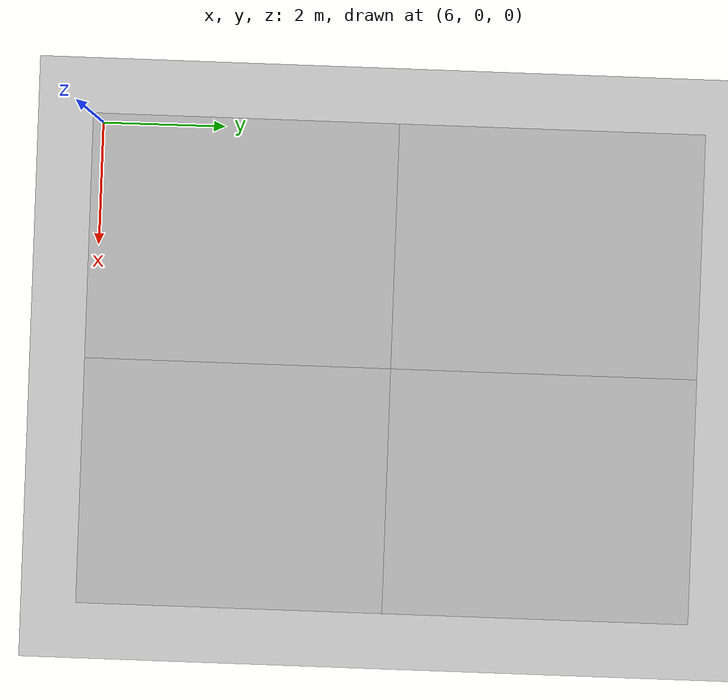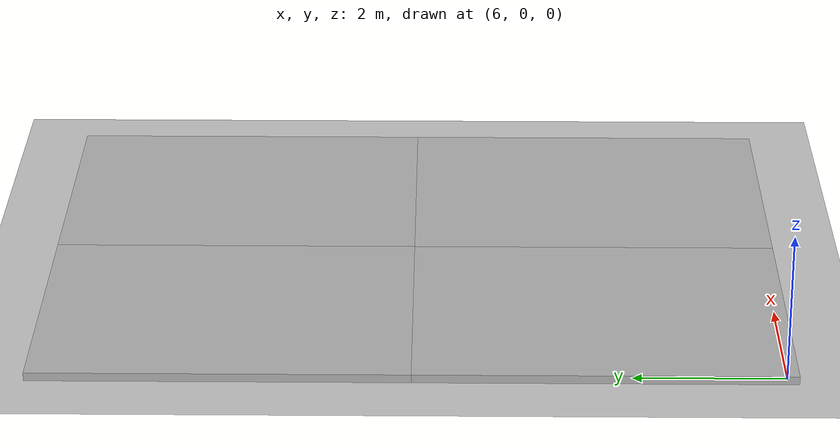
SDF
<sdf version="1.6">
 <world name="default">
  <model name="ground_plane">
   <static>1</static>
   <link name="link">
    <collision name="collision">
     <geometry><plane><normal>0 0 1</normal><size>100 100</size></plane></geometry>
     <surface><friction><ode><mu>100</mu><mu2>50</mu2></ode></friction></surface>
    </collision>
    <visual name="visual">
     <cast_shadows>0</cast_shadows>
     <geometry><plane><normal>0 0 1</normal><size>100 100</size></plane></geometry>
     <material>
      <script><uri>file://media/materials/scripts/gazebo.material</uri><name>Gazebo/Grey</name></script>
     </material>
    </visual>
   </link>
  </model>
  <model name="small_plant_22">
   <pose>8.45946 2.00404 -5885.85 0 -0 0</pose>
   <link name="link_0">
    <pose>8.45946 2.00404 0.110674 0 -0 0</pose>
    <inertial>
     <inertia><ixx>1</ixx><ixy>0</ixy><ixz>0</ixz><iyy>1</iyy><iyz>0</iyz><izz>1</izz></inertia>
     <mass>1</mass>
    </inertial>
   </link>
  </model>
  <model name="small_plant_23">
   <pose>8.66216 2.00073 -5885.85 0 -0 0</pose>
   <link name="link_0">
    <pose>8.66216 2.00073 0.110674 0 -0 0</pose>
    <inertial>
     <inertia><ixx>1</ixx><ixy>0</ixy><ixz>0</ixz><iyy>1</iyy><iyz>0</iyz><izz>1</izz></inertia>
     <mass>1</mass>
    </inertial>
   </link>
  </model>
  <model name="small_plant_24">
   <pose>8.86486 2.00329 -5885.85 0 -0 0</pose>
   <link name="link_0">
    <pose>8.86486 2.00329 0.110674 0 -0 0</pose>
    <inertial>
     <inertia><ixx>1</ixx><ixy>0</ixy><ixz>0</ixz><iyy>1</iyy><iyz>0</iyz><izz>1</izz></inertia>
     <mass>1</mass>
    </inertial>
   </link>
  </model>
  <model name="small_plant_25">
   <pose>9.06757 2.00418 -5885.85 0 -0 0</pose>
   <link name="link_0">
    <pose>9.06757 2.00418 0.110674 0 -0 0</pose>
    <inertial>
     <inertia><ixx>1</ixx><ixy>0</ixy><ixz>0</ixz><iyy>1</iyy><iyz>0</iyz><izz>1</izz></inertia>
     <mass>1</mass>
    </inertial>
   </link>
  </model>
  <model name="small_plant_26">
   <pose>9.27027 2.00492 -5885.85 0 -0 0</pose>
   <link name="link_0">
    <pose>9.27027 2.00492 0.110674 0 -0 0</pose>
    <inertial>
     <inertia><ixx>1</ixx><ixy>0</ixy><ixz>0</ixz><iyy>1</iyy><iyz>0</iyz><izz>1</izz></inertia>
     <mass>1</mass>
    </inertial>
   </link>
  </model>
  <model name="small_plant_27">
   <pose>9.47297 2.00561 -5885.51 0 -0 0</pose>
   <link name="link_0">
    <pose>9.47297 2.00561 0.110674 0 -0 0</pose>
    <inertial>
     <inertia><ixx>1</ixx><ixy>0</ixy><ixz>0</ixz><iyy>1</iyy><iyz>0</iyz><izz>1</izz></inertia>
     <mass>1</mass>
    </inertial>
   </link>
  </model>
  <model name="small_plant_28">
   <pose>9.67568 2.00465 -5885.51 0 -0 0</pose>
   <link name="link_0">
    <pose>9.67568 2.00465 0.110674 0 -0 0</pose>
    <inertial>
     <inertia><ixx>1</ixx><ixy>0</ixy><ixz>0</ixz><iyy>1</iyy><iyz>0</iyz><izz>1</izz></inertia>
     <mass>1</mass>
    </inertial>
   </link>
  </model>
  <model name="small_plant_29">
   <pose>9.87838 2.00073 -5885.51 0 -0 0</pose>
   <link name="link_0">
    <pose>9.87838 2.00073 0.110674 0 -0 0</pose>
    <inertial>
     <inertia><ixx>1</ixx><ixy>0</ixy><ixz>0</ixz><iyy>1</iyy><iyz>0</iyz><izz>1</izz></inertia>
     <mass>1</mass>
    </inertial>
   </link>
  </model>
  <model name="small_plant_30">
   <pose>10.0811 2.00253 -5885.51 0 -0 0</pose>
   <link name="link_0">
    <pose>10.0811 2.00253 0.110674 0 -0 0</pose>
    <inertial>
     <inertia><ixx>1</ixx><ixy>0</ixy><ixz>0</ixz><iyy>1</iyy><iyz>0</iyz><izz>1</izz></inertia>
     <mass>1</mass>
    </inertial>
   </link>
  </model>
  <model name="small_plant_31">
   <pose>10.2838 2.00343 -5885.51 0 -0 0</pose>
   <link name="link_0">
    <pose>10.2838 2.00343 0.110674 0 -0 0</pose>
    <inertial>
     <inertia><ixx>1</ixx><ixy>0</ixy><ixz>0</ixz><iyy>1</iyy><iyz>0</iyz><izz>1</izz></inertia>
     <mass>1</mass>
    </inertial>
   </link>
  </model>
  <model name="small_plant_32">
   <pose>10.4865 2.01132 -5885.51 0 -0 0</pose>
   <link name="link_0">
    <pose>10.4865 2.01132 0.110674 0 -0 0</pose>
    <inertial>
     <inertia><ixx>1</ixx><ixy>0</ixy><ixz>0</ixz><iyy>1</iyy><iyz>0</iyz><izz>1</izz></inertia>
     <mass>1</mass>
    </inertial>
   </link>
  </model>
  <model name="small_plant_97">
   <pose>8.45946 2.70182 -5884.49 0 -0 0</pose>
   <link name="link_0">
    <pose>8.45946 2.70182 0.110674 0 -0 0</pose>
    <inertial>
     <inertia><ixx>1</ixx><ixy>0</ixy><ixz>0</ixz><iyy>1</iyy><iyz>0</iyz><izz>1</izz></inertia>
     <mass>1</mass>
    </inertial>
   </link>
  </model>
  <model name="small_plant_98">
   <pose>8.66216 2.70787 -5884.49 0 -0 0</pose>
   <link name="link_0">
    <pose>8.66216 2.70787 0.110674 0 -0 0</pose>
    <inertial>
     <inertia><ixx>1</ixx><ixy>0</ixy><ixz>0</ixz><iyy>1</iyy><iyz>0</iyz><izz>1</izz></inertia>
     <mass>1</mass>
    </inertial>
   </link>
  </model>
  <model name="small_plant_99">
   <pose>8.86486 2.70119 -5884.49 0 -0 0</pose>
   <link name="link_0">
    <pose>8.86486 2.70119 0.110674 0 -0 0</pose>
    <inertial>
     <inertia><ixx>1</ixx><ixy>0</ixy><ixz>0</ixz><iyy>1</iyy><iyz>0</iyz><izz>1</izz></inertia>
     <mass>1</mass>
    </inertial>
   </link>
  </model>
  <model name="small_plant_100">
   <pose>9.06757 2.7059 -5886.19 0 -0 0</pose>
   <link name="link_0">
    <pose>9.06757 2.7059 0.110674 0 -0 0</pose>
    <inertial>
     <inertia><ixx>1</ixx><ixy>0</ixy><ixz>0</ixz><iyy>1</iyy><iyz>0</iyz><izz>1</izz></inertia>
     <mass>1</mass>
    </inertial>
   </link>
  </model>
  <model name="small_plant_101">
   <pose>9.27027 2.70226 -5886.19 0 -0 0</pose>
   <link name="link_0">
    <pose>9.27027 2.70226 0.110674 0 -0 0</pose>
    <inertial>
     <inertia><ixx>1</ixx><ixy>0</ixy><ixz>0</ixz><iyy>1</iyy><iyz>0</iyz><izz>1</izz></inertia>
     <mass>1</mass>
    </inertial>
   </link>
  </model>
  <model name="small_plant_102">
   <pose>9.47297 2.70222 -5886.19 0 -0 0</pose>
   <link name="link_0">
    <pose>9.47297 2.70222 0.110674 0 -0 0</pose>
    <inertial>
     <inertia><ixx>1</ixx><ixy>0</ixy><ixz>0</ixz><iyy>1</iyy><iyz>0</iyz><izz>1</izz></inertia>
     <mass>1</mass>
    </inertial>
   </link>
  </model>
  <model name="small_plant_103">
   <pose>9.67568 2.70183 -5886.19 0 -0 0</pose>
   <link name="link_0">
    <pose>9.67568 2.70183 0.110674 0 -0 0</pose>
    <inertial>
     <inertia><ixx>1</ixx><ixy>0</ixy><ixz>0</ixz><iyy>1</iyy><iyz>0</iyz><izz>1</izz></inertia>
     <mass>1</mass>
    </inertial>
   </link>
  </model>
  <model name="small_plant_104">
   <pose>9.87838 2.70028 -5886.19 0 -0 0</pose>
   <link name="link_0">
    <pose>9.87838 2.70028 0.110674 0 -0 0</pose>
    <inertial>
     <inertia><ixx>1</ixx><ixy>0</ixy><ixz>0</ixz><iyy>1</iyy><iyz>0</iyz><izz>1</izz></inertia>
     <mass>1</mass>
    </inertial>
   </link>
  </model>
  <model name="small_plant_105">
   <pose>10.0811 2.70955 -5886.19 0 -0 0</pose>
   <link name="link_0">
    <pose>10.0811 2.70955 0.110674 0 -0 0</pose>
    <inertial>
     <inertia><ixx>1</ixx><ixy>0</ixy><ixz>0</ixz><iyy>1</iyy><iyz>0</iyz><izz>1</izz></inertia>
     <mass>1</mass>
    </inertial>
   </link>
  </model>
  <model name="small_plant_106">
   <pose>10.2838 2.70987 -5886.19 0 -0 0</pose>
   <link name="link_0">
    <pose>10.2838 2.70987 0.110674 0 -0 0</pose>
    <inertial>
     <inertia><ixx>1</ixx><ixy>0</ixy><ixz>0</ixz><iyy>1</iyy><iyz>0</iyz><izz>1</izz></inertia>
     <mass>1</mass>
    </inertial>
   </link>
  </model>
  <model name="small_plant_172">
   <pose>8.45946 3.40331 -5885.85 0 -0 0</pose>
   <link name="link_0">
    <pose>8.45946 3.40331 0.110674 0 -0 0</pose>
    <inertial>
     <inertia><ixx>1</ixx><ixy>0</ixy><ixz>0</ixz><iyy>1</iyy><iyz>0</iyz><izz>1</izz></inertia>
     <mass>1</mass>
    </inertial>
   </link>
  </model>
  <model name="small_plant_173">
   <pose>8.66216 3.40028 -5885.85 0 -0 0</pose>
   <link name="link_0">
    <pose>8.66216 3.40028 0.110674 0 -0 0</pose>
    <inertial>
     <inertia><ixx>1</ixx><ixy>0</ixy><ixz>0</ixz><iyy>1</iyy><iyz>0</iyz><izz>1</izz></inertia>
     <mass>1</mass>
    </inertial>
   </link>
  </model>
  <model name="small_plant_174">
   <pose>8.86486 3.40035 -5885.85 0 -0 0</pose>
   <link name="link_0">
    <pose>8.86486 3.40035 0.110674 0 -0 0</pose>
    <inertial>
     <inertia><ixx>1</ixx><ixy>0</ixy><ixz>0</ixz><iyy>1</iyy><iyz>0</iyz><izz>1</izz></inertia>
     <mass>1</mass>
    </inertial>
   </link>
  </model>
  <model name="small_plant_175">
   <pose>9.06757 3.40189 -5885.85 0 -0 0</pose>
   <link name="link_0">
    <pose>9.06757 3.40189 0.110674 0 -0 0</pose>
    <inertial>
     <inertia><ixx>1</ixx><ixy>0</ixy><ixz>0</ixz><iyy>1</iyy><iyz>0</iyz><izz>1</izz></inertia>
     <mass>1</mass>
    </inertial>
   </link>
  </model>
  <model name="small_plant_176">
   <pose>9.27027 3.4015 -5885.85 0 -0 0</pose>
   <link name="link_0">
    <pose>9.27027 3.4015 0.110674 0 -0 0</pose>
    <inertial>
     <inertia><ixx>1</ixx><ixy>0</ixy><ixz>0</ixz><iyy>1</iyy><iyz>0</iyz><izz>1</izz></inertia>
     <mass>1</mass>
    </inertial>
   </link>
  </model>
  <model name="small_plant_177">
   <pose>9.47297 3.4047 -5885.85 0 -0 0</pose>
   <link name="link_0">
    <pose>9.47297 3.4047 0.110674 0 -0 0</pose>
    <inertial>
     <inertia><ixx>1</ixx><ixy>0</ixy><ixz>0</ixz><iyy>1</iyy><iyz>0</iyz><izz>1</izz></inertia>
     <mass>1</mass>
    </inertial>
   </link>
  </model>
  <model name="small_plant_178">
   <pose>9.67568 3.40401 -5885.85 0 -0 0</pose>
   <link name="link_0">
    <pose>9.67568 3.40401 0.110674 0 -0 0</pose>
    <inertial>
     <inertia><ixx>1</ixx><ixy>0</ixy><ixz>0</ixz><iyy>1</iyy><iyz>0</iyz><izz>1</izz></inertia>
     <mass>1</mass>
    </inertial>
   </link>
  </model>
  <model name="small_plant_179">
   <pose>9.87838 3.40239 -5885.85 0 -0 0</pose>
   <link name="link_0">
    <pose>9.87838 3.40239 0.110674 0 -0 0</pose>
    <inertial>
     <inertia><ixx>1</ixx><ixy>0</ixy><ixz>0</ixz><iyy>1</iyy><iyz>0</iyz><izz>1</izz></inertia>
     <mass>1</mass>
    </inertial>
   </link>
  </model>
  <model name="small_plant_180">
   <pose>10.0811 3.40339 -5885.85 0 -0 0</pose>
   <link name="link_0">
    <pose>10.0811 3.40339 0.110674 0 -0 0</pose>
    <inertial>
     <inertia><ixx>1</ixx><ixy>0</ixy><ixz>0</ixz><iyy>1</iyy><iyz>0</iyz><izz>1</izz></inertia>
     <mass>1</mass>
    </inertial>
   </link>
  </model>
  <model name="small_plant_181">
   <pose>10.2838 3.40188 -5885.85 0 -0 0</pose>
   <link name="link_0">
    <pose>10.2838 3.40188 0.110674 0 -0 0</pose>
    <inertial>
     <inertia><ixx>1</ixx><ixy>0</ixy><ixz>0</ixz><iyy>1</iyy><iyz>0</iyz><izz>1</izz></inertia>
     <mass>1</mass>
    </inertial>
   </link>
  </model>
  <model name="small_plant_247">
   <pose>8.45946 4.10251 -5886.1 0 -0 0</pose>
   <link name="link_0">
    <pose>8.45946 4.10251 0.110674 0 -0 0</pose>
    <inertial>
     <inertia><ixx>1</ixx><ixy>0</ixy><ixz>0</ixz><iyy>1</iyy><iyz>0</iyz><izz>1</izz></inertia>
     <mass>1</mass>
    </inertial>
   </link>
  </model>
  <model name="small_plant_248">
   <pose>8.66216 4.10343 -5886.1 0 -0 0</pose>
   <link name="link_0">
    <pose>8.66216 4.10343 0.110674 0 -0 0</pose>
    <inertial>
     <inertia><ixx>1</ixx><ixy>0</ixy><ixz>0</ixz><iyy>1</iyy><iyz>0</iyz><izz>1</izz></inertia>
     <mass>1</mass>
    </inertial>
   </link>
  </model>
  <model name="small_plant_249">
   <pose>8.86486 4.10041 -5886.1 0 -0 0</pose>
   <link name="link_0">
    <pose>8.86486 4.10041 0.110674 0 -0 0</pose>
    <inertial>
     <inertia><ixx>1</ixx><ixy>0</ixy><ixz>0</ixz><iyy>1</iyy><iyz>0</iyz><izz>1</izz></inertia>
     <mass>1</mass>
    </inertial>
   </link>
  </model>
  <model name="small_plant_250">
   <pose>9.06757 4.1029 -5886.1 0 -0 0</pose>
   <link name="link_0">
    <pose>9.06757 4.1029 0.110674 0 -0 0</pose>
    <inertial>
     <inertia><ixx>1</ixx><ixy>0</ixy><ixz>0</ixz><iyy>1</iyy><iyz>0</iyz><izz>1</izz></inertia>
     <mass>1</mass>
    </inertial>
   </link>
  </model>
  <model name="small_plant_251">
   <pose>9.27027 4.10107 -5886.1 0 -0 0</pose>
   <link name="link_0">
    <pose>9.27027 4.10107 0.110674 0 -0 0</pose>
    <inertial>
     <inertia><ixx>1</ixx><ixy>0</ixy><ixz>0</ixz><iyy>1</iyy><iyz>0</iyz><izz>1</izz></inertia>
     <mass>1</mass>
    </inertial>
   </link>
  </model>
  <model name="small_plant_252">
   <pose>9.47297 4.10339 -5886.1 0 -0 0</pose>
   <link name="link_0">
    <pose>9.47297 4.10339 0.110674 0 -0 0</pose>
    <inertial>
     <inertia><ixx>1</ixx><ixy>0</ixy><ixz>0</ixz><iyy>1</iyy><iyz>0</iyz><izz>1</izz></inertia>
     <mass>1</mass>
    </inertial>
   </link>
  </model>
  <model name="small_plant_253">
   <pose>9.67568 4.1054 -5886.1 0 -0 0</pose>
   <link name="link_0">
    <pose>9.67568 4.1054 0.110674 0 -0 0</pose>
    <inertial>
     <inertia><ixx>1</ixx><ixy>0</ixy><ixz>0</ixz><iyy>1</iyy><iyz>0</iyz><izz>1</izz></inertia>
     <mass>1</mass>
    </inertial>
   </link>
  </model>
  <model name="small_plant_254">
   <pose>9.87838 4.10341 -5886.1 0 -0 0</pose>
   <link name="link_0">
    <pose>9.87838 4.10341 0.110674 0 -0 0</pose>
    <inertial>
     <inertia><ixx>1</ixx><ixy>0</ixy><ixz>0</ixz><iyy>1</iyy><iyz>0</iyz><izz>1</izz></inertia>
     <mass>1</mass>
    </inertial>
   </link>
  </model>
  <model name="small_plant_255">
   <pose>10.0811 4.10867 -5886.1 0 -0 0</pose>
   <link name="link_0">
    <pose>10.0811 4.10867 0.110674 0 -0 0</pose>
    <inertial>
     <inertia><ixx>1</ixx><ixy>0</ixy><ixz>0</ixz><iyy>1</iyy><iyz>0</iyz><izz>1</izz></inertia>
     <mass>1</mass>
    </inertial>
   </link>
  </model>
  <model name="small_plant_256">
   <pose>10.2838 4.10208 -5886.1 0 -0 0</pose>
   <link name="link_0">
    <pose>10.2838 4.10208 0.110674 0 -0 0</pose>
    <inertial>
     <inertia><ixx>1</ixx><ixy>0</ixy><ixz>0</ixz><iyy>1</iyy><iyz>0</iyz><izz>1</izz></inertia>
     <mass>1</mass>
    </inertial>
   </link>
  </model>
  <model name="small_plant_322">
   <pose>8.45946 4.80278 -5885.85 0 -0 0</pose>
   <link name="link_0">
    <pose>8.45946 4.80278 0.110674 0 -0 0</pose>
    <inertial>
     <inertia><ixx>1</ixx><ixy>0</ixy><ixz>0</ixz><iyy>1</iyy><iyz>0</iyz><izz>1</izz></inertia>
     <mass>1</mass>
    </inertial>
   </link>
  </model>
  <model name="small_plant_323">
   <pose>8.66216 4.80968 -5885.85 0 -0 0</pose>
   <link name="link_0">
    <pose>8.66216 4.80968 0.110674 0 -0 0</pose>
    <inertial>
     <inertia><ixx>1</ixx><ixy>0</ixy><ixz>0</ixz><iyy>1</iyy><iyz>0</iyz><izz>1</izz></inertia>
     <mass>1</mass>
    </inertial>
   </link>
  </model>
  <model name="small_plant_324">
   <pose>8.86486 4.80448 -5885.85 0 -0 0</pose>
   <link name="link_0">
    <pose>8.86486 4.80448 0.110674 0 -0 0</pose>
    <inertial>
     <inertia><ixx>1</ixx><ixy>0</ixy><ixz>0</ixz><iyy>1</iyy><iyz>0</iyz><izz>1</izz></inertia>
     <mass>1</mass>
    </inertial>
   </link>
  </model>
  <model name="small_plant_325">
   <pose>9.06757 4.8045 -5885.85 0 -0 0</pose>
   <link name="link_0">
    <pose>9.06757 4.8045 0.110674 0 -0 0</pose>
    <inertial>
     <inertia><ixx>1</ixx><ixy>0</ixy><ixz>0</ixz><iyy>1</iyy><iyz>0</iyz><izz>1</izz></inertia>
     <mass>1</mass>
    </inertial>
   </link>
  </model>
  <model name="small_plant_326">
   <pose>9.27027 4.8013 -5885.85 0 -0 0</pose>
   <link name="link_0">
    <pose>9.27027 4.8013 0.110674 0 -0 0</pose>
    <inertial>
     <inertia><ixx>1</ixx><ixy>0</ixy><ixz>0</ixz><iyy>1</iyy><iyz>0</iyz><izz>1</izz></inertia>
     <mass>1</mass>
    </inertial>
   </link>
  </model>
  <model name="small_plant_327">
   <pose>9.47297 4.80338 -5885.85 0 -0 0</pose>
   <link name="link_0">
    <pose>9.47297 4.80338 0.110674 0 -0 0</pose>
    <inertial>
     <inertia><ixx>1</ixx><ixy>0</ixy><ixz>0</ixz><iyy>1</iyy><iyz>0</iyz><izz>1</izz></inertia>
     <mass>1</mass>
    </inertial>
   </link>
  </model>
  <model name="small_plant_328">
   <pose>9.67568 4.8019 -5885.85 0 -0 0</pose>
   <link name="link_0">
    <pose>9.67568 4.8019 0.110674 0 -0 0</pose>
    <inertial>
     <inertia><ixx>1</ixx><ixy>0</ixy><ixz>0</ixz><iyy>1</iyy><iyz>0</iyz><izz>1</izz></inertia>
     <mass>1</mass>
    </inertial>
   </link>
  </model>
  <model name="small_plant_329">
   <pose>9.87838 4.80061 -5885.85 0 -0 0</pose>
   <link name="link_0">
    <pose>9.87838 4.80061 0.110674 0 -0 0</pose>
    <inertial>
     <inertia><ixx>1</ixx><ixy>0</ixy><ixz>0</ixz><iyy>1</iyy><iyz>0</iyz><izz>1</izz></inertia>
     <mass>1</mass>
    </inertial>
   </link>
  </model>
  <model name="small_plant_330">
   <pose>10.0811 4.80207 -5885.85 0 -0 0</pose>
   <link name="link_0">
    <pose>10.0811 4.80207 0.110674 0 -0 0</pose>
    <inertial>
     <inertia><ixx>1</ixx><ixy>0</ixy><ixz>0</ixz><iyy>1</iyy><iyz>0</iyz><izz>1</izz></inertia>
     <mass>1</mass>
    </inertial>
   </link>
  </model>
  <model name="small_plant_331">
   <pose>10.2838 4.80676 -5885.85 0 -0 0</pose>
   <link name="link_0">
    <pose>10.2838 4.80676 0.110674 0 -0 0</pose>
    <inertial>
     <inertia><ixx>1</ixx><ixy>0</ixy><ixz>0</ixz><iyy>1</iyy><iyz>0</iyz><izz>1</izz></inertia>
     <mass>1</mass>
    </inertial>
   </link>
  </model>
  <model name="small_plant_397">
   <pose>8.45946 5.50169 -5885.51 0 -0 0</pose>
   <link name="link_0">
    <pose>8.45946 5.50169 0.110674 0 -0 0</pose>
    <inertial>
     <inertia><ixx>1</ixx><ixy>0</ixy><ixz>0</ixz><iyy>1</iyy><iyz>0</iyz><izz>1</izz></inertia>
     <mass>1</mass>
    </inertial>
   </link>
  </model>
  <model name="small_plant_398">
   <pose>8.66216 5.50614 -5885.51 0 -0 0</pose>
   <link name="link_0">
    <pose>8.66216 5.50614 0.110674 0 -0 0</pose>
    <inertial>
     <inertia><ixx>1</ixx><ixy>0</ixy><ixz>0</ixz><iyy>1</iyy><iyz>0</iyz><izz>1</izz></inertia>
     <mass>1</mass>
    </inertial>
   </link>
  </model>
  <model name="small_plant_399">
   <pose>8.86486 5.508 -5885.51 0 -0 0</pose>
   <link name="link_0">
    <pose>8.86486 5.508 0.110674 0 -0 0</pose>
    <inertial>
     <inertia><ixx>1</ixx><ixy>0</ixy><ixz>0</ixz><iyy>1</iyy><iyz>0</iyz><izz>1</izz></inertia>
     <mass>1</mass>
    </inertial>
   </link>
  </model>
  <model name="small_plant_400">
   <pose>9.06757 5.50551 -5885.17 0 -0 0</pose>
   <link name="link_0">
    <pose>9.06757 5.50551 0.110674 0 -0 0</pose>
    <inertial>
     <inertia><ixx>1</ixx><ixy>0</ixy><ixz>0</ixz><iyy>1</iyy><iyz>0</iyz><izz>1</izz></inertia>
     <mass>1</mass>
    </inertial>
   </link>
  </model>
  <model name="small_plant_401">
   <pose>9.27027 5.50541 -5885.17 0 -0 0</pose>
   <link name="link_0">
    <pose>9.27027 5.50541 0.110674 0 -0 0</pose>
    <inertial>
     <inertia><ixx>1</ixx><ixy>0</ixy><ixz>0</ixz><iyy>1</iyy><iyz>0</iyz><izz>1</izz></inertia>
     <mass>1</mass>
    </inertial>
   </link>
  </model>
  <model name="small_plant_402">
   <pose>9.47297 5.50621 -5885.17 0 -0 0</pose>
   <link name="link_0">
    <pose>9.47297 5.50621 0.110674 0 -0 0</pose>
    <inertial>
     <inertia><ixx>1</ixx><ixy>0</ixy><ixz>0</ixz><iyy>1</iyy><iyz>0</iyz><izz>1</izz></inertia>
     <mass>1</mass>
    </inertial>
   </link>
  </model>
  <model name="small_plant_403">
   <pose>9.67568 5.50728 -5885.17 0 -0 0</pose>
   <link name="link_0">
    <pose>9.67568 5.50728 0.110674 0 -0 0</pose>
    <inertial>
     <inertia><ixx>1</ixx><ixy>0</ixy><ixz>0</ixz><iyy>1</iyy><iyz>0</iyz><izz>1</izz></inertia>
     <mass>1</mass>
    </inertial>
   </link>
  </model>
  <model name="small_plant_404">
   <pose>9.87838 5.50516 -5885.17 0 -0 0</pose>
   <link name="link_0">
    <pose>9.87838 5.50516 0.110674 0 -0 0</pose>
    <inertial>
     <inertia><ixx>1</ixx><ixy>0</ixy><ixz>0</ixz><iyy>1</iyy><iyz>0</iyz><izz>1</izz></inertia>
     <mass>1</mass>
    </inertial>
   </link>
  </model>
  <model name="small_plant_405">
   <pose>10.0811 5.50004 -5885.17 0 -0 0</pose>
   <link name="link_0">
    <pose>10.0811 5.50004 0.110674 0 -0 0</pose>
    <inertial>
     <inertia><ixx>1</ixx><ixy>0</ixy><ixz>0</ixz><iyy>1</iyy><iyz>0</iyz><izz>1</izz></inertia>
     <mass>1</mass>
    </inertial>
   </link>
  </model>
  <model name="small_plant_406">
   <pose>10.2838 5.50729 -5885.17 0 -0 0</pose>
   <link name="link_0">
    <pose>10.2838 5.50729 0.110674 0 -0 0</pose>
    <inertial>
     <inertia><ixx>1</ixx><ixy>0</ixy><ixz>0</ixz><iyy>1</iyy><iyz>0</iyz><izz>1</izz></inertia>
     <mass>1</mass>
    </inertial>
   </link>
  </model>
  <model name="small_plant_21">
   <pose>8.25676 2.00266 -5885.85 0 -0 0</pose>
   <link name="link_0">
    <pose>8.25676 2.00266 0.110674 0 -0 0</pose>
    <inertial>
     <inertia><ixx>1</ixx><ixy>0</ixy><ixz>0</ixz><iyy>1</iyy><iyz>0</iyz><izz>1</izz></inertia>
     <mass>1</mass>
    </inertial>
   </link>
  </model>
  <model name="small_plant_22">
   <pose>8.45946 2.00404 -5885.85 0 -0 0</pose>
   <link name="link_0">
    <pose>8.45946 2.00404 0.110674 0 -0 0</pose>
    <inertial>
     <inertia><ixx>1</ixx><ixy>0</ixy><ixz>0</ixz><iyy>1</iyy><iyz>0</iyz><izz>1</izz></inertia>
     <mass>1</mass>
    </inertial>
   </link>
  </model>
  <model name="small_plant_23">
   <pose>8.66216 2.00073 -5885.85 0 -0 0</pose>
   <link name="link_0">
    <pose>8.66216 2.00073 0.110674 0 -0 0</pose>
    <inertial>
     <inertia><ixx>1</ixx><ixy>0</ixy><ixz>0</ixz><iyy>1</iyy><iyz>0</iyz><izz>1</izz></inertia>
     <mass>1</mass>
    </inertial>
   </link>
  </model>
  <model name="small_plant_24">
   <pose>8.86486 2.00329 -5885.85 0 -0 0</pose>
   <link name="link_0">
    <pose>8.86486 2.00329 0.110674 0 -0 0</pose>
    <inertial>
     <inertia><ixx>1</ixx><ixy>0</ixy><ixz>0</ixz><iyy>1</iyy><iyz>0</iyz><izz>1</izz></inertia>
     <mass>1</mass>
    </inertial>
   </link>
  </model>
  <model name="small_plant_25">
   <pose>9.06757 2.00418 -5885.85 0 -0 0</pose>
   <link name="link_0">
    <pose>9.06757 2.00418 0.110674 0 -0 0</pose>
    <inertial>
     <inertia><ixx>1</ixx><ixy>0</ixy><ixz>0</ixz><iyy>1</iyy><iyz>0</iyz><izz>1</izz></inertia>
     <mass>1</mass>
    </inertial>
   </link>
  </model>
  <model name="small_plant_26">
   <pose>9.27027 2.00492 -5885.85 0 -0 0</pose>
   <link name="link_0">
    <pose>9.27027 2.00492 0.110674 0 -0 0</pose>
    <inertial>
     <inertia><ixx>1</ixx><ixy>0</ixy><ixz>0</ixz><iyy>1</iyy><iyz>0</iyz><izz>1</izz></inertia>
     <mass>1</mass>
    </inertial>
   </link>
  </model>
  <model name="small_plant_27">
   <pose>9.47297 2.00561 -5885.51 0 -0 0</pose>
   <link name="link_0">
    <pose>9.47297 2.00561 0.110674 0 -0 0</pose>
    <inertial>
     <inertia><ixx>1</ixx><ixy>0</ixy><ixz>0</ixz><iyy>1</iyy><iyz>0</iyz><izz>1</izz></inertia>
     <mass>1</mass>
    </inertial>
   </link>
  </model>
  <model name="small_plant_28">
   <pose>9.67568 2.00465 -5885.51 0 -0 0</pose>
   <link name="link_0">
    <pose>9.67568 2.00465 0.110674 0 -0 0</pose>
    <inertial>
     <inertia><ixx>1</ixx><ixy>0</ixy><ixz>0</ixz><iyy>1</iyy><iyz>0</iyz><izz>1</izz></inertia>
     <mass>1</mass>
    </inertial>
   </link>
  </model>
  <model name="small_plant_29">
   <pose>9.87838 2.00073 -5885.51 0 -0 0</pose>
   <link name="link_0">
    <pose>9.87838 2.00073 0.110674 0 -0 0</pose>
    <inertial>
     <inertia><ixx>1</ixx><ixy>0</ixy><ixz>0</ixz><iyy>1</iyy><iyz>0</iyz><izz>1</izz></inertia>
     <mass>1</mass>
    </inertial>
   </link>
  </model>
  <model name="small_plant_30">
   <pose>10.0811 2.00253 -5885.51 0 -0 0</pose>
   <link name="link_0">
    <pose>10.0811 2.00253 0.110674 0 -0 0</pose>
    <inertial>
     <inertia><ixx>1</ixx><ixy>0</ixy><ixz>0</ixz><iyy>1</iyy><iyz>0</iyz><izz>1</izz></inertia>
     <mass>1</mass>
    </inertial>
   </link>
  </model>
  <model name="small_plant_31">
   <pose>10.2838 2.00343 -5885.51 0 -0 0</pose>
   <link name="link_0">
    <pose>10.2838 2.00343 0.110674 0 -0 0</pose>
    <inertial>
     <inertia><ixx>1</ixx><ixy>0</ixy><ixz>0</ixz><iyy>1</iyy><iyz>0</iyz><izz>1</izz></inertia>
     <mass>1</mass>
    </inertial>
   </link>
  </model>
  <model name="small_plant_96">
   <pose>8.25676 2.70351 -5884.49 0 -0 0</pose>
   <link name="link_0">
    <pose>8.25676 2.70351 0.110674 0 -0 0</pose>
    <inertial>
     <inertia><ixx>1</ixx><ixy>0</ixy><ixz>0</ixz><iyy>1</iyy><iyz>0</iyz><izz>1</izz></inertia>
     <mass>1</mass>
    </inertial>
   </link>
  </model>
  <model name="small_plant_97">
   <pose>8.45946 2.70182 -5884.49 0 -0 0</pose>
   <link name="link_0">
    <pose>8.45946 2.70182 0.110674 0 -0 0</pose>
    <inertial>
     <inertia><ixx>1</ixx><ixy>0</ixy><ixz>0</ixz><iyy>1</iyy><iyz>0</iyz><izz>1</izz></inertia>
     <mass>1</mass>
    </inertial>
   </link>
  </model>
  <model name="small_plant_98">
   <pose>8.66216 2.70787 -5884.49 0 -0 0</pose>
   <link name="link_0">
    <pose>8.66216 2.70787 0.110674 0 -0 0</pose>
    <inertial>
     <inertia><ixx>1</ixx><ixy>0</ixy><ixz>0</ixz><iyy>1</iyy><iyz>0</iyz><izz>1</izz></inertia>
     <mass>1</mass>
    </inertial>
   </link>
  </model>
  <model name="small_plant_99">
   <pose>8.86486 2.70119 -5884.49 0 -0 0</pose>
   <link name="link_0">
    <pose>8.86486 2.70119 0.110674 0 -0 0</pose>
    <inertial>
     <inertia><ixx>1</ixx><ixy>0</ixy><ixz>0</ixz><iyy>1</iyy><iyz>0</iyz><izz>1</izz></inertia>
     <mass>1</mass>
    </inertial>
   </link>
  </model>
  <model name="small_plant_100">
   <pose>9.06757 2.7059 -5886.19 0 -0 0</pose>
   <link name="link_0">
    <pose>9.06757 2.7059 0.110674 0 -0 0</pose>
    <inertial>
     <inertia><ixx>1</ixx><ixy>0</ixy><ixz>0</ixz><iyy>1</iyy><iyz>0</iyz><izz>1</izz></inertia>
     <mass>1</mass>
    </inertial>
   </link>
  </model>
  <model name="small_plant_101">
   <pose>9.27027 2.70226 -5886.19 0 -0 0</pose>
   <link name="link_0">
    <pose>9.27027 2.70226 0.110674 0 -0 0</pose>
    <inertial>
     <inertia><ixx>1</ixx><ixy>0</ixy><ixz>0</ixz><iyy>1</iyy><iyz>0</iyz><izz>1</izz></inertia>
     <mass>1</mass>
    </inertial>
   </link>
  </model>
  <model name="small_plant_102">
   <pose>9.47297 2.70222 -5886.19 0 -0 0</pose>
   <link name="link_0">
    <pose>9.47297 2.70222 0.110674 0 -0 0</pose>
    <inertial>
     <inertia><ixx>1</ixx><ixy>0</ixy><ixz>0</ixz><iyy>1</iyy><iyz>0</iyz><izz>1</izz></inertia>
     <mass>1</mass>
    </inertial>
   </link>
  </model>
  <model name="small_plant_103">
   <pose>9.67568 2.70183 -5886.19 0 -0 0</pose>
   <link name="link_0">
    <pose>9.67568 2.70183 0.110674 0 -0 0</pose>
    <inertial>
     <inertia><ixx>1</ixx><ixy>0</ixy><ixz>0</ixz><iyy>1</iyy><iyz>0</iyz><izz>1</izz></inertia>
     <mass>1</mass>
    </inertial>
   </link>
  </model>
  <model name="small_plant_104">
   <pose>9.87838 2.70028 -5886.19 0 -0 0</pose>
   <link name="link_0">
    <pose>9.87838 2.70028 0.110674 0 -0 0</pose>
    <inertial>
     <inertia><ixx>1</ixx><ixy>0</ixy><ixz>0</ixz><iyy>1</iyy><iyz>0</iyz><izz>1</izz></inertia>
     <mass>1</mass>
    </inertial>
   </link>
  </model>
  <model name="small_plant_105">
   <pose>10.0811 2.70955 -5886.19 0 -0 0</pose>
   <link name="link_0">
    <pose>10.0811 2.70955 0.110674 0 -0 0</pose>
    <inertial>
     <inertia><ixx>1</ixx><ixy>0</ixy><ixz>0</ixz><iyy>1</iyy><iyz>0</iyz><izz>1</izz></inertia>
     <mass>1</mass>
    </inertial>
   </link>
  </model>
  <model name="small_plant_106">
   <pose>10.2838 2.70987 -5886.19 0 -0 0</pose>
   <link name="link_0">
    <pose>10.2838 2.70987 0.110674 0 -0 0</pose>
    <inertial>
     <inertia><ixx>1</ixx><ixy>0</ixy><ixz>0</ixz><iyy>1</iyy><iyz>0</iyz><izz>1</izz></inertia>
     <mass>1</mass>
    </inertial>
   </link>
  </model>
  <model name="small_plant_171">
   <pose>8.25676 3.40048 -5885.85 0 -0 0</pose>
   <link name="link_0">
    <pose>8.25676 3.40048 0.110674 0 -0 0</pose>
    <inertial>
     <inertia><ixx>1</ixx><ixy>0</ixy><ixz>0</ixz><iyy>1</iyy><iyz>0</iyz><izz>1</izz></inertia>
     <mass>1</mass>
    </inertial>
   </link>
  </model>
  <model name="small_plant_172">
   <pose>8.45946 3.40331 -5885.85 0 -0 0</pose>
   <link name="link_0">
    <pose>8.45946 3.40331 0.110674 0 -0 0</pose>
    <inertial>
     <inertia><ixx>1</ixx><ixy>0</ixy><ixz>0</ixz><iyy>1</iyy><iyz>0</iyz><izz>1</izz></inertia>
     <mass>1</mass>
    </inertial>
   </link>
  </model>
  <model name="small_plant_173">
   <pose>8.66216 3.40028 -5885.85 0 -0 0</pose>
   <link name="link_0">
    <pose>8.66216 3.40028 0.110674 0 -0 0</pose>
    <inertial>
     <inertia><ixx>1</ixx><ixy>0</ixy><ixz>0</ixz><iyy>1</iyy><iyz>0</iyz><izz>1</izz></inertia>
     <mass>1</mass>
    </inertial>
   </link>
  </model>
  <model name="small_plant_174">
   <pose>8.86486 3.40035 -5885.85 0 -0 0</pose>
   <link name="link_0">
    <pose>8.86486 3.40035 0.110674 0 -0 0</pose>
    <inertial>
     <inertia><ixx>1</ixx><ixy>0</ixy><ixz>0</ixz><iyy>1</iyy><iyz>0</iyz><izz>1</izz></inertia>
     <mass>1</mass>
    </inertial>
   </link>
  </model>
  <model name="small_plant_175">
   <pose>9.06757 3.40189 -5885.85 0 -0 0</pose>
   <link name="link_0">
    <pose>9.06757 3.40189 0.110674 0 -0 0</pose>
    <inertial>
     <inertia><ixx>1</ixx><ixy>0</ixy><ixz>0</ixz><iyy>1</iyy><iyz>0</iyz><izz>1</izz></inertia>
     <mass>1</mass>
    </inertial>
   </link>
  </model>
  <model name="small_plant_176">
   <pose>9.27027 3.4015 -5885.85 0 -0 0</pose>
   <link name="link_0">
    <pose>9.27027 3.4015 0.110674 0 -0 0</pose>
    <inertial>
     <inertia><ixx>1</ixx><ixy>0</ixy><ixz>0</ixz><iyy>1</iyy><iyz>0</iyz><izz>1</izz></inertia>
     <mass>1</mass>
    </inertial>
   </link>
  </model>
  <model name="small_plant_177">
   <pose>9.47297 3.4047 -5885.85 0 -0 0</pose>
   <link name="link_0">
    <pose>9.47297 3.4047 0.110674 0 -0 0</pose>
    <inertial>
     <inertia><ixx>1</ixx><ixy>0</ixy><ixz>0</ixz><iyy>1</iyy><iyz>0</iyz><izz>1</izz></inertia>
     <mass>1</mass>
    </inertial>
   </link>
  </model>
  <model name="small_plant_178">
   <pose>9.67568 3.40401 -5885.85 0 -0 0</pose>
   <link name="link_0">
    <pose>9.67568 3.40401 0.110674 0 -0 0</pose>
    <inertial>
     <inertia><ixx>1</ixx><ixy>0</ixy><ixz>0</ixz><iyy>1</iyy><iyz>0</iyz><izz>1</izz></inertia>
     <mass>1</mass>
    </inertial>
   </link>
  </model>
  <model name="small_plant_179">
   <pose>9.87838 3.40239 -5885.85 0 -0 0</pose>
   <link name="link_0">
    <pose>9.87838 3.40239 0.110674 0 -0 0</pose>
    <inertial>
     <inertia><ixx>1</ixx><ixy>0</ixy><ixz>0</ixz><iyy>1</iyy><iyz>0</iyz><izz>1</izz></inertia>
     <mass>1</mass>
    </inertial>
   </link>
  </model>
  <model name="small_plant_180">
   <pose>10.0811 3.40339 -5885.85 0 -0 0</pose>
   <link name="link_0">
    <pose>10.0811 3.40339 0.110674 0 -0 0</pose>
    <inertial>
     <inertia><ixx>1</ixx><ixy>0</ixy><ixz>0</ixz><iyy>1</iyy><iyz>0</iyz><izz>1</izz></inertia>
     <mass>1</mass>
    </inertial>
   </link>
  </model>
  <model name="small_plant_181">
   <pose>10.2838 3.40188 -5885.85 0 -0 0</pose>
   <link name="link_0">
    <pose>10.2838 3.40188 0.110674 0 -0 0</pose>
    <inertial>
     <inertia><ixx>1</ixx><ixy>0</ixy><ixz>0</ixz><iyy>1</iyy><iyz>0</iyz><izz>1</izz></inertia>
     <mass>1</mass>
    </inertial>
   </link>
  </model>
  <model name="small_plant_246">
   <pose>8.25676 4.10286 -5886.1 0 -0 0</pose>
   <link name="link_0">
    <pose>8.25676 4.10286 0.110674 0 -0 0</pose>
    <inertial>
     <inertia><ixx>1</ixx><ixy>0</ixy><ixz>0</ixz><iyy>1</iyy><iyz>0</iyz><izz>1</izz></inertia>
     <mass>1</mass>
    </inertial>
   </link>
  </model>
  <model name="small_plant_247">
   <pose>8.45946 4.10251 -5886.1 0 -0 0</pose>
   <link name="link_0">
    <pose>8.45946 4.10251 0.110674 0 -0 0</pose>
    <inertial>
     <inertia><ixx>1</ixx><ixy>0</ixy><ixz>0</ixz><iyy>1</iyy><iyz>0</iyz><izz>1</izz></inertia>
     <mass>1</mass>
    </inertial>
   </link>
  </model>
  <model name="small_plant_248">
   <pose>8.66216 4.10343 -5886.1 0 -0 0</pose>
   <link name="link_0">
    <pose>8.66216 4.10343 0.110674 0 -0 0</pose>
    <inertial>
     <inertia><ixx>1</ixx><ixy>0</ixy><ixz>0</ixz><iyy>1</iyy><iyz>0</iyz><izz>1</izz></inertia>
     <mass>1</mass>
    </inertial>
   </link>
  </model>
  <model name="small_plant_249">
   <pose>8.86486 4.10041 -5886.1 0 -0 0</pose>
   <link name="link_0">
    <pose>8.86486 4.10041 0.110674 0 -0 0</pose>
    <inertial>
     <inertia><ixx>1</ixx><ixy>0</ixy><ixz>0</ixz><iyy>1</iyy><iyz>0</iyz><izz>1</izz></inertia>
     <mass>1</mass>
    </inertial>
   </link>
  </model>
  <model name="small_plant_250">
   <pose>9.06757 4.1029 -5886.1 0 -0 0</pose>
   <link name="link_0">
    <pose>9.06757 4.1029 0.110674 0 -0 0</pose>
    <inertial>
     <inertia><ixx>1</ixx><ixy>0</ixy><ixz>0</ixz><iyy>1</iyy><iyz>0</iyz><izz>1</izz></inertia>
     <mass>1</mass>
    </inertial>
   </link>
  </model>
  <model name="small_plant_251">
   <pose>9.27027 4.10107 -5886.1 0 -0 0</pose>
   <link name="link_0">
    <pose>9.27027 4.10107 0.110674 0 -0 0</pose>
    <inertial>
     <inertia><ixx>1</ixx><ixy>0</ixy><ixz>0</ixz><iyy>1</iyy><iyz>0</iyz><izz>1</izz></inertia>
     <mass>1</mass>
    </inertial>
   </link>
  </model>
  <model name="small_plant_252">
   <pose>9.47297 4.10339 -5886.1 0 -0 0</pose>
   <link name="link_0">
    <pose>9.47297 4.10339 0.110674 0 -0 0</pose>
    <inertial>
     <inertia><ixx>1</ixx><ixy>0</ixy><ixz>0</ixz><iyy>1</iyy><iyz>0</iyz><izz>1</izz></inertia>
     <mass>1</mass>
    </inertial>
   </link>
  </model>
  <model name="small_plant_253">
   <pose>9.67568 4.1054 -5886.1 0 -0 0</pose>
   <link name="link_0">
    <pose>9.67568 4.1054 0.110674 0 -0 0</pose>
    <inertial>
     <inertia><ixx>1</ixx><ixy>0</ixy><ixz>0</ixz><iyy>1</iyy><iyz>0</iyz><izz>1</izz></inertia>
     <mass>1</mass>
    </inertial>
   </link>
  </model>
  <model name="small_plant_254">
   <pose>9.87838 4.10341 -5886.1 0 -0 0</pose>
   <link name="link_0">
    <pose>9.87838 4.10341 0.110674 0 -0 0</pose>
    <inertial>
     <inertia><ixx>1</ixx><ixy>0</ixy><ixz>0</ixz><iyy>1</iyy><iyz>0</iyz><izz>1</izz></inertia>
     <mass>1</mass>
    </inertial>
   </link>
  </model>
  <model name="small_plant_255">
   <pose>10.0811 4.10867 -5886.1 0 -0 0</pose>
   <link name="link_0">
    <pose>10.0811 4.10867 0.110674 0 -0 0</pose>
    <inertial>
     <inertia><ixx>1</ixx><ixy>0</ixy><ixz>0</ixz><iyy>1</iyy><iyz>0</iyz><izz>1</izz></inertia>
     <mass>1</mass>
    </inertial>
   </link>
  </model>
  <model name="small_plant_256">
   <pose>10.2838 4.10208 -5886.1 0 -0 0</pose>
   <link name="link_0">
    <pose>10.2838 4.10208 0.110674 0 -0 0</pose>
    <inertial>
     <inertia><ixx>1</ixx><ixy>0</ixy><ixz>0</ixz><iyy>1</iyy><iyz>0</iyz><izz>1</izz></inertia>
     <mass>1</mass>
    </inertial>
   </link>
  </model>
  <model name="small_plant_321">
   <pose>8.25676 4.80439 -5885.85 0 -0 0</pose>
   <link name="link_0">
    <pose>8.25676 4.80439 0.110674 0 -0 0</pose>
    <inertial>
     <inertia><ixx>1</ixx><ixy>0</ixy><ixz>0</ixz><iyy>1</iyy><iyz>0</iyz><izz>1</izz></inertia>
     <mass>1</mass>
    </inertial>
   </link>
  </model>
  <model name="small_plant_322">
   <pose>8.45946 4.80278 -5885.85 0 -0 0</pose>
   <link name="link_0">
    <pose>8.45946 4.80278 0.110674 0 -0 0</pose>
    <inertial>
     <inertia><ixx>1</ixx><ixy>0</ixy><ixz>0</ixz><iyy>1</iyy><iyz>0</iyz><izz>1</izz></inertia>
     <mass>1</mass>
    </inertial>
   </link>
  </model>
  <model name="small_plant_323">
   <pose>8.66216 4.80968 -5885.85 0 -0 0</pose>
   <link name="link_0">
    <pose>8.66216 4.80968 0.110674 0 -0 0</pose>
    <inertial>
     <inertia><ixx>1</ixx><ixy>0</ixy><ixz>0</ixz><iyy>1</iyy><iyz>0</iyz><izz>1</izz></inertia>
     <mass>1</mass>
    </inertial>
   </link>
  </model>
  <model name="small_plant_324">
   <pose>8.86486 4.80448 -5885.85 0 -0 0</pose>
   <link name="link_0">
    <pose>8.86486 4.80448 0.110674 0 -0 0</pose>
    <inertial>
     <inertia><ixx>1</ixx><ixy>0</ixy><ixz>0</ixz><iyy>1</iyy><iyz>0</iyz><izz>1</izz></inertia>
     <mass>1</mass>
    </inertial>
   </link>
  </model>
  <model name="small_plant_325">
   <pose>9.06757 4.8045 -5885.85 0 -0 0</pose>
   <link name="link_0">
    <pose>9.06757 4.8045 0.110674 0 -0 0</pose>
    <inertial>
     <inertia><ixx>1</ixx><ixy>0</ixy><ixz>0</ixz><iyy>1</iyy><iyz>0</iyz><izz>1</izz></inertia>
     <mass>1</mass>
    </inertial>
   </link>
  </model>
  <model name="small_plant_326">
   <pose>9.27027 4.8013 -5885.85 0 -0 0</pose>
   <link name="link_0">
    <pose>9.27027 4.8013 0.110674 0 -0 0</pose>
    <inertial>
     <inertia><ixx>1</ixx><ixy>0</ixy><ixz>0</ixz><iyy>1</iyy><iyz>0</iyz><izz>1</izz></inertia>
     <mass>1</mass>
    </inertial>
   </link>
  </model>
  <model name="small_plant_327">
   <pose>9.47297 4.80338 -5885.85 0 -0 0</pose>
   <link name="link_0">
    <pose>9.47297 4.80338 0.110674 0 -0 0</pose>
    <inertial>
     <inertia><ixx>1</ixx><ixy>0</ixy><ixz>0</ixz><iyy>1</iyy><iyz>0</iyz><izz>1</izz></inertia>
     <mass>1</mass>
    </inertial>
   </link>
  </model>
  <model name="small_plant_328">
   <pose>9.67568 4.8019 -5885.85 0 -0 0</pose>
   <link name="link_0">
    <pose>9.67568 4.8019 0.110674 0 -0 0</pose>
    <inertial>
     <inertia><ixx>1</ixx><ixy>0</ixy><ixz>0</ixz><iyy>1</iyy><iyz>0</iyz><izz>1</izz></inertia>
     <mass>1</mass>
    </inertial>
   </link>
  </model>
  <model name="small_plant_329">
   <pose>9.87838 4.80061 -5885.85 0 -0 0</pose>
   <link name="link_0">
    <pose>9.87838 4.80061 0.110674 0 -0 0</pose>
    <inertial>
     <inertia><ixx>1</ixx><ixy>0</ixy><ixz>0</ixz><iyy>1</iyy><iyz>0</iyz><izz>1</izz></inertia>
     <mass>1</mass>
    </inertial>
   </link>
  </model>
  <model name="small_plant_330">
   <pose>10.0811 4.80207 -5885.85 0 -0 0</pose>
   <link name="link_0">
    <pose>10.0811 4.80207 0.110674 0 -0 0</pose>
    <inertial>
     <inertia><ixx>1</ixx><ixy>0</ixy><ixz>0</ixz><iyy>1</iyy><iyz>0</iyz><izz>1</izz></inertia>
     <mass>1</mass>
    </inertial>
   </link>
  </model>
  <model name="small_plant_331">
   <pose>10.2838 4.80676 -5885.85 0 -0 0</pose>
   <link name="link_0">
    <pose>10.2838 4.80676 0.110674 0 -0 0</pose>
    <inertial>
     <inertia><ixx>1</ixx><ixy>0</ixy><ixz>0</ixz><iyy>1</iyy><iyz>0</iyz><izz>1</izz></inertia>
     <mass>1</mass>
    </inertial>
   </link>
  </model>
  <model name="small_plant_396">
   <pose>8.25676 5.50365 -5885.51 0 -0 0</pose>
   <link name="link_0">
    <pose>8.25676 5.50365 0.110674 0 -0 0</pose>
    <inertial>
     <inertia><ixx>1</ixx><ixy>0</ixy><ixz>0</ixz><iyy>1</iyy><iyz>0</iyz><izz>1</izz></inertia>
     <mass>1</mass>
    </inertial>
   </link>
  </model>
  <model name="small_plant_397">
   <pose>8.45946 5.50169 -5885.51 0 -0 0</pose>
   <link name="link_0">
    <pose>8.45946 5.50169 0.110674 0 -0 0</pose>
    <inertial>
     <inertia><ixx>1</ixx><ixy>0</ixy><ixz>0</ixz><iyy>1</iyy><iyz>0</iyz><izz>1</izz></inertia>
     <mass>1</mass>
    </inertial>
   </link>
  </model>
  <model name="small_plant_398">
   <pose>8.66216 5.50614 -5885.51 0 -0 0</pose>
   <link name="link_0">
    <pose>8.66216 5.50614 0.110674 0 -0 0</pose>
    <inertial>
     <inertia><ixx>1</ixx><ixy>0</ixy><ixz>0</ixz><iyy>1</iyy><iyz>0</iyz><izz>1</izz></inertia>
     <mass>1</mass>
    </inertial>
   </link>
  </model>
  <model name="small_plant_399">
   <pose>8.86486 5.508 -5885.51 0 -0 0</pose>
   <link name="link_0">
    <pose>8.86486 5.508 0.110674 0 -0 0</pose>
    <inertial>
     <inertia><ixx>1</ixx><ixy>0</ixy><ixz>0</ixz><iyy>1</iyy><iyz>0</iyz><izz>1</izz></inertia>
     <mass>1</mass>
    </inertial>
   </link>
  </model>
  <model name="small_plant_400">
   <pose>9.06757 5.50551 -5885.17 0 -0 0</pose>
   <link name="link_0">
    <pose>9.06757 5.50551 0.110674 0 -0 0</pose>
    <inertial>
     <inertia><ixx>1</ixx><ixy>0</ixy><ixz>0</ixz><iyy>1</iyy><iyz>0</iyz><izz>1</izz></inertia>
     <mass>1</mass>
    </inertial>
   </link>
  </model>
  <model name="small_plant_401">
   <pose>9.27027 5.50541 -5885.17 0 -0 0</pose>
   <link name="link_0">
    <pose>9.27027 5.50541 0.110674 0 -0 0</pose>
    <inertial>
     <inertia><ixx>1</ixx><ixy>0</ixy><ixz>0</ixz><iyy>1</iyy><iyz>0</iyz><izz>1</izz></inertia>
     <mass>1</mass>
    </inertial>
   </link>
  </model>
  <model name="small_plant_402">
   <pose>9.47297 5.50621 -5885.17 0 -0 0</pose>
   <link name="link_0">
    <pose>9.47297 5.50621 0.110674 0 -0 0</pose>
    <inertial>
     <inertia><ixx>1</ixx><ixy>0</ixy><ixz>0</ixz><iyy>1</iyy><iyz>0</iyz><izz>1</izz></inertia>
     <mass>1</mass>
    </inertial>
   </link>
  </model>
  <model name="small_plant_403">
   <pose>9.67568 5.50728 -5885.17 0 -0 0</pose>
   <link name="link_0">
    <pose>9.67568 5.50728 0.110674 0 -0 0</pose>
    <inertial>
     <inertia><ixx>1</ixx><ixy>0</ixy><ixz>0</ixz><iyy>1</iyy><iyz>0</iyz><izz>1</izz></inertia>
     <mass>1</mass>
    </inertial>
   </link>
  </model>
  <model name="small_plant_404">
   <pose>9.87838 5.50516 -5885.17 0 -0 0</pose>
   <link name="link_0">
    <pose>9.87838 5.50516 0.110674 0 -0 0</pose>
    <inertial>
     <inertia><ixx>1</ixx><ixy>0</ixy><ixz>0</ixz><iyy>1</iyy><iyz>0</iyz><izz>1</izz></inertia>
     <mass>1</mass>
    </inertial>
   </link>
  </model>
  <model name="small_plant_405">
   <pose>10.0811 5.50004 -5885.17 0 -0 0</pose>
   <link name="link_0">
    <pose>10.0811 5.50004 0.110674 0 -0 0</pose>
    <inertial>
     <inertia><ixx>1</ixx><ixy>0</ixy><ixz>0</ixz><iyy>1</iyy><iyz>0</iyz><izz>1</izz></inertia>
     <mass>1</mass>
    </inertial>
   </link>
  </model>
  <model name="small_plant_406">
   <pose>10.2838 5.50729 -5885.17 0 -0 0</pose>
   <link name="link_0">
    <pose>10.2838 5.50729 0.110674 0 -0 0</pose>
    <inertial>
     <inertia><ixx>1</ixx><ixy>0</ixy><ixz>0</ixz><iyy>1</iyy><iyz>0</iyz><izz>1</izz></inertia>
     <mass>1</mass>
    </inertial>
   </link>
  </model>
  <model name="mud_box_4">
   <static>1</static>
   <link name="link">
    <collision name="collision"><geometry><box><size>8 10 0.2</size></box></geometry></collision>
    <visual name="visual_1">
     <pose>-2 2.5 0 0 -0 0</pose>
     <cast_shadows>0</cast_shadows>
     <geometry><box><size>4 5 0.2</size></box></geometry>
     <material>
      <script>
       <uri>model://mud_box/materials/scripts</uri>
       <uri>model://mud_box/materials/textures</uri>
       <name>vrc/mud</name>
      </script>
     </material>
    </visual>
    <visual name="visual_2">
     <pose>2 2.5 0 0 -0 0</pose>
     <cast_shadows>0</cast_shadows>
     <geometry><box><size>4 5 0.2</size></box></geometry>
     <material>
      <script>
       <uri>model://mud_box/materials/scripts</uri>
       <uri>model://mud_box/materials/textures</uri>
       <name>vrc/mud</name>
      </script>
     </material>
    </visual>
    <visual name="visual_3">
     <pose>2 -2.5 0 0 -0 0</pose>
     <cast_shadows>0</cast_shadows>
     <geometry><box><size>4 5 0.2</size></box></geometry>
     <material>
      <script>
       <uri>model://mud_box/materials/scripts</uri>
       <uri>model://mud_box/materials/textures</uri>
       <name>vrc/mud</name>
      </script>
     </material>
    </visual>
    <visual name="visual_4">
     <pose>-2 -2.5 0 0 -0 0</pose>
     <cast_shadows>0</cast_shadows>
     <geometry><box><size>4 5 0.2</size></box></geometry>
     <material>
      <script>
       <uri>model://mud_box/materials/scripts</uri>
       <uri>model://mud_box/materials/textures</uri>
       <name>vrc/mud</name>
      </script>
     </material>
    </visual>
   </link>
   <pose>9.86512 4.85393 0 0 -0 0</pose>
  </model>
 </world>
</sdf>
